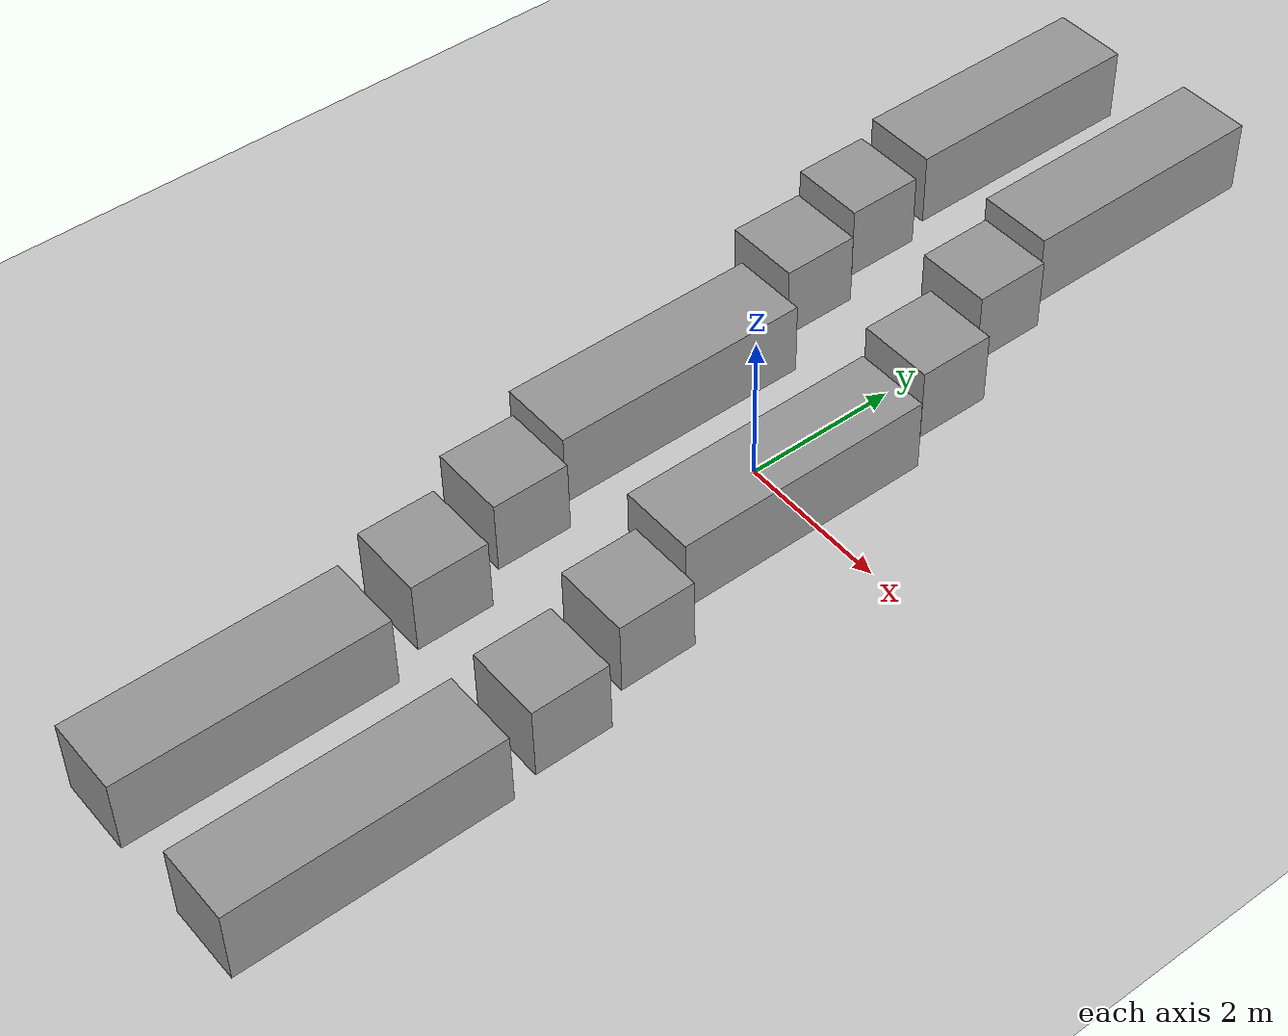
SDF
<sdf version="1.6">
 <world name="default">
  <light name="sun" type="directional">
   <pose>0 0 10 0 -0 0</pose>
   <diffuse>0.8 0.8 0.8 1</diffuse>
   <specular>0.1 0.1 0.1 1</specular>
   <attenuation>
    <range>1000</range>
    <constant>0.9</constant>
    <linear>0.01</linear>
    <quadratic>0.001</quadratic>
   </attenuation>
   <direction>-0.5 0.5 -1</direction>
  </light>
  <model name="ground_plane">
   <static>1</static>
   <link name="link">
    <collision name="collision">
     <geometry><plane><normal>0 0 1</normal><size>100 100</size></plane></geometry>
     <surface><friction><ode><mu>100</mu><mu2>50</mu2></ode></friction></surface>
    </collision>
    <visual name="visual">
     <cast_shadows>0</cast_shadows>
     <geometry><plane><normal>0 0 1</normal><size>100 100</size></plane></geometry>
     <material>
      <script><uri>file://media/materials/scripts/gazebo.material</uri><name>Gazebo/Grey</name></script>
     </material>
    </visual>
   </link>
  </model>
  <gravity>0 0 -1.62</gravity>
  <magnetic_field>6e-06 2.3e-05 -4.2e-05</magnetic_field>
  <atmosphere type="adiabatic"/>
  <physics name="default_physics" default="0" type="ode">
   <max_step_size>0.001</max_step_size>
   <real_time_factor>1</real_time_factor>
   <real_time_update_rate>1000</real_time_update_rate>
  </physics>
  <scene><ambient>0.4 0.4 0.4 1</ambient><background>0.7 0.7 0.7 1</background><shadows>1</shadows></scene>
  <spherical_coordinates>
   <surface_model>EARTH_WGS84</surface_model>
   <latitude_deg>0</latitude_deg>
   <longitude_deg>0</longitude_deg>
   <elevation>0</elevation>
   <heading_deg>0</heading_deg>
  </spherical_coordinates>
  <model name="unit_box_2">
   <pose>-1.99007 2.25962 0.499999 2e-06 -0 0</pose>
   <link name="link">
    <inertial>
     <mass>1</mass>
     <inertia>
      <ixx>0.166667</ixx>
      <ixy>0</ixy>
      <ixz>0</ixz>
      <iyy>0.166667</iyy>
      <iyz>0</iyz>
      <izz>0.166667</izz>
     </inertia>
    </inertial>
    <collision name="collision"><geometry><box><size>1 1 1</size></box></geometry></collision>
    <visual name="visual">
     <geometry><box><size>1 1 1</size></box></geometry>
     <material>
      <script><name>Gazebo/Grey</name><uri>file://media/materials/scripts/gazebo.material</uri></script>
     </material>
    </visual>
   </link>
  </model>
  <model name="unit_box_3">
   <pose>-2.31131 3.56246 0.499999 -2e-06 0 0</pose>
   <link name="link">
    <inertial>
     <mass>1</mass>
     <inertia>
      <ixx>0.166667</ixx>
      <ixy>0</ixy>
      <ixz>0</ixz>
      <iyy>0.166667</iyy>
      <iyz>0</iyz>
      <izz>0.166667</izz>
     </inertia>
    </inertial>
    <collision name="collision"><geometry><box><size>1 1 1</size></box></geometry></collision>
    <visual name="visual">
     <geometry><box><size>1 1 1</size></box></geometry>
     <material>
      <script><name>Gazebo/Grey</name><uri>file://media/materials/scripts/gazebo.material</uri></script>
     </material>
    </visual>
   </link>
  </model>
  <model name="unit_box_6">
   <pose>0.282725 2.33986 0.499999 2e-06 0 -0.004757</pose>
   <link name="link">
    <inertial>
     <mass>1</mass>
     <inertia>
      <ixx>0.166667</ixx>
      <ixy>0</ixy>
      <ixz>0</ixz>
      <iyy>0.166667</iyy>
      <iyz>0</iyz>
      <izz>0.166667</izz>
     </inertia>
    </inertial>
    <collision name="collision"><geometry><box><size>1 1 1</size></box></geometry></collision>
    <visual name="visual">
     <geometry><box><size>1 1 1</size></box></geometry>
     <material>
      <script><name>Gazebo/Grey</name><uri>file://media/materials/scripts/gazebo.material</uri></script>
     </material>
    </visual>
   </link>
  </model>
  <model name="unit_box_7">
   <pose>-0.2235 3.70054 0.499999 2e-06 -0 0</pose>
   <link name="link">
    <inertial>
     <mass>1</mass>
     <inertia>
      <ixx>0.166667</ixx>
      <ixy>0</ixy>
      <ixz>0</ixz>
      <iyy>0.166667</iyy>
      <iyz>0</iyz>
      <izz>0.166667</izz>
     </inertia>
    </inertial>
    <collision name="collision"><geometry><box><size>1 1 1</size></box></geometry></collision>
    <visual name="visual">
     <geometry><box><size>1 1 1</size></box></geometry>
     <material>
      <script><name>Gazebo/Grey</name><uri>file://media/materials/scripts/gazebo.material</uri></script>
     </material>
    </visual>
   </link>
  </model>
  <model name="unit_box_8_0">
   <pose>-2.50554 6.06543 0.499996 -3e-06 -0 1e-06</pose>
   <link name="link">
    <inertial>
     <mass>1</mass>
     <inertia>
      <ixx>0.166667</ixx>
      <ixy>0</ixy>
      <ixz>0</ixz>
      <iyy>0.166667</iyy>
      <iyz>0</iyz>
      <izz>0.166667</izz>
     </inertia>
    </inertial>
    <collision name="collision"><geometry><box><size>1 3.30522 1</size></box></geometry></collision>
    <visual name="visual">
     <geometry><box><size>1 3.30522 1</size></box></geometry>
     <material>
      <script><name>Gazebo/Grey</name><uri>file://media/materials/scripts/gazebo.material</uri></script>
     </material>
    </visual>
   </link>
  </model>
  <model name="unit_box_8_0_clone">
   <pose>-0.505017 6.17989 0.499995 3e-06 -0 0</pose>
   <link name="link">
    <inertial>
     <mass>1</mass>
     <inertia>
      <ixx>0.166667</ixx>
      <ixy>0</ixy>
      <ixz>0</ixz>
      <iyy>0.166667</iyy>
      <iyz>0</iyz>
      <izz>0.166667</izz>
     </inertia>
    </inertial>
    <collision name="collision"><geometry><box><size>1 3.40701 1</size></box></geometry></collision>
    <visual name="visual">
     <geometry><box><size>1 3.40701 1</size></box></geometry>
     <material>
      <script><name>Gazebo/Grey</name><uri>file://media/materials/scripts/gazebo.material</uri></script>
     </material>
    </visual>
   </link>
  </model>
  <model name="unit_box_8_0_clone_0">
   <pose>0.606143 -0.199231 0.499995 -3e-06 0 0</pose>
   <link name="link">
    <inertial>
     <mass>1</mass>
     <inertia>
      <ixx>0.166667</ixx>
      <ixy>0</ixy>
      <ixz>0</ixz>
      <iyy>0.166667</iyy>
      <iyz>0</iyz>
      <izz>0.166667</izz>
     </inertia>
    </inertial>
    <collision name="collision"><geometry><box><size>1 3.40701 1</size></box></geometry></collision>
    <visual name="visual">
     <geometry><box><size>1 3.40701 1</size></box></geometry>
     <material>
      <script><name>Gazebo/Grey</name><uri>file://media/materials/scripts/gazebo.material</uri></script>
     </material>
    </visual>
   </link>
  </model>
  <model name="unit_box_8_0_clone_1">
   <pose>-1.48304 -0.251273 0.499995 3e-06 -0 0</pose>
   <link name="link">
    <inertial>
     <mass>1</mass>
     <inertia>
      <ixx>0.166667</ixx>
      <ixy>0</ixy>
      <ixz>0</ixz>
      <iyy>0.166667</iyy>
      <iyz>0</iyz>
      <izz>0.166667</izz>
     </inertia>
    </inertial>
    <collision name="collision"><geometry><box><size>1 3.40701 1</size></box></geometry></collision>
    <visual name="visual">
     <geometry><box><size>1 3.40701 1</size></box></geometry>
     <material>
      <script><name>Gazebo/Grey</name><uri>file://media/materials/scripts/gazebo.material</uri></script>
     </material>
    </visual>
   </link>
  </model>
  <model name="unit_box_2_clone">
   <pose>-1.14951 -2.64542 0.499999 2e-06 -0 0</pose>
   <link name="link">
    <inertial>
     <mass>1</mass>
     <inertia>
      <ixx>0.166667</ixx>
      <ixy>0</ixy>
      <ixz>0</ixz>
      <iyy>0.166667</iyy>
      <iyz>0</iyz>
      <izz>0.166667</izz>
     </inertia>
    </inertial>
    <collision name="collision"><geometry><box><size>1 1 1</size></box></geometry></collision>
    <visual name="visual">
     <geometry><box><size>1 1 1</size></box></geometry>
     <material>
      <script><name>Gazebo/Grey</name><uri>file://media/materials/scripts/gazebo.material</uri></script>
     </material>
    </visual>
   </link>
  </model>
  <model name="unit_box_2_clone_0">
   <pose>1.06451 -2.64816 0.499999 -2e-06 0 0</pose>
   <link name="link">
    <inertial>
     <mass>1</mass>
     <inertia>
      <ixx>0.166667</ixx>
      <ixy>0</ixy>
      <ixz>0</ixz>
      <iyy>0.166667</iyy>
      <iyz>0</iyz>
      <izz>0.166667</izz>
     </inertia>
    </inertial>
    <collision name="collision"><geometry><box><size>1 1 1</size></box></geometry></collision>
    <visual name="visual">
     <geometry><box><size>1 1 1</size></box></geometry>
     <material>
      <script><name>Gazebo/Grey</name><uri>file://media/materials/scripts/gazebo.material</uri></script>
     </material>
    </visual>
   </link>
  </model>
  <model name="unit_box_2_clone_1">
   <pose>-0.762366 -4.00016 0.499999 -2e-06 0 0</pose>
   <link name="link">
    <inertial>
     <mass>1</mass>
     <inertia>
      <ixx>0.166667</ixx>
      <ixy>0</ixy>
      <ixz>0</ixz>
      <iyy>0.166667</iyy>
      <iyz>0</iyz>
      <izz>0.166667</izz>
     </inertia>
    </inertial>
    <collision name="collision"><geometry><box><size>1 1 1</size></box></geometry></collision>
    <visual name="visual">
     <geometry><box><size>1 1 1</size></box></geometry>
     <material>
      <script><name>Gazebo/Grey</name><uri>file://media/materials/scripts/gazebo.material</uri></script>
     </material>
    </visual>
   </link>
  </model>
  <model name="unit_box_2_clone_2">
   <pose>1.38872 -4.02765 0.499999 0 2e-06 0</pose>
   <link name="link">
    <inertial>
     <mass>1</mass>
     <inertia>
      <ixx>0.166667</ixx>
      <ixy>0</ixy>
      <ixz>0</ixz>
      <iyy>0.166667</iyy>
      <iyz>0</iyz>
      <izz>0.166667</izz>
     </inertia>
    </inertial>
    <collision name="collision"><geometry><box><size>1 1 1</size></box></geometry></collision>
    <visual name="visual">
     <geometry><box><size>1 1 1</size></box></geometry>
     <material>
      <script><name>Gazebo/Grey</name><uri>file://media/materials/scripts/gazebo.material</uri></script>
     </material>
    </visual>
   </link>
  </model>
  <model name="unit_box_8_0_clone_1_clone">
   <pose>-0.517941 -6.61529 0.499995 3e-06 -0 0</pose>
   <link name="link">
    <inertial>
     <mass>1</mass>
     <inertia>
      <ixx>0.166667</ixx>
      <ixy>0</ixy>
      <ixz>0</ixz>
      <iyy>0.166667</iyy>
      <iyz>0</iyz>
      <izz>0.166667</izz>
     </inertia>
    </inertial>
    <collision name="collision"><geometry><box><size>1 3.40701 1</size></box></geometry></collision>
    <visual name="visual">
     <geometry><box><size>1 3.40701 1</size></box></geometry>
     <material>
      <script><name>Gazebo/Grey</name><uri>file://media/materials/scripts/gazebo.material</uri></script>
     </material>
    </visual>
   </link>
  </model>
  <model name="unit_box_8_0_clone_1_clone_0">
   <pose>1.49929 -6.58525 0.499995 3e-06 -0 0</pose>
   <link name="link">
    <inertial>
     <mass>1</mass>
     <inertia>
      <ixx>0.166667</ixx>
      <ixy>0</ixy>
      <ixz>0</ixz>
      <iyy>0.166667</iyy>
      <iyz>0</iyz>
      <izz>0.166667</izz>
     </inertia>
    </inertial>
    <collision name="collision"><geometry><box><size>1 3.40701 1</size></box></geometry></collision>
    <visual name="visual">
     <geometry><box><size>1 3.40701 1</size></box></geometry>
     <material>
      <script><name>Gazebo/Grey</name><uri>file://media/materials/scripts/gazebo.material</uri></script>
     </material>
    </visual>
   </link>
  </model>
 </world>
</sdf>
